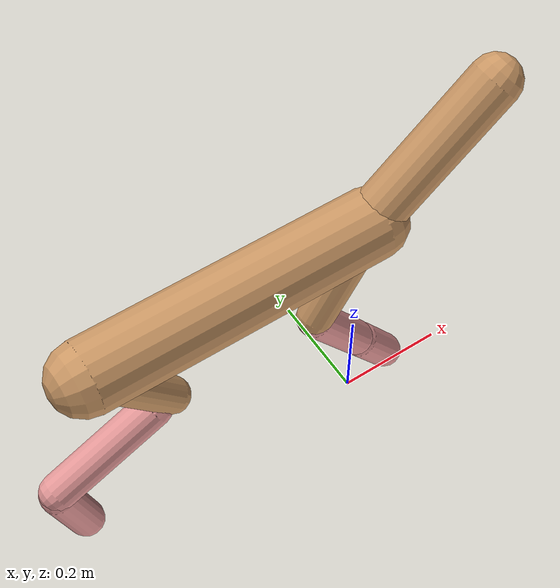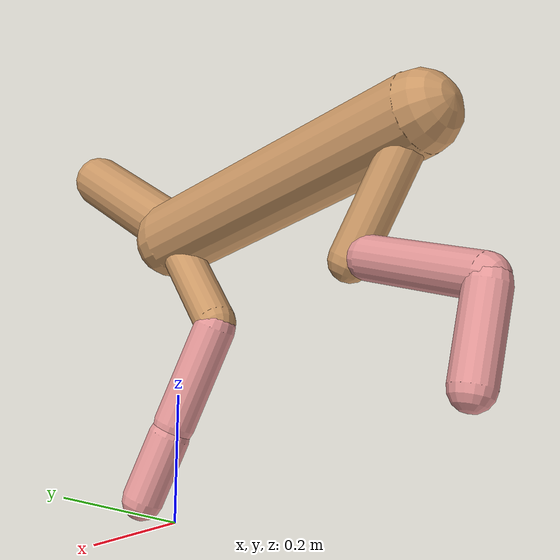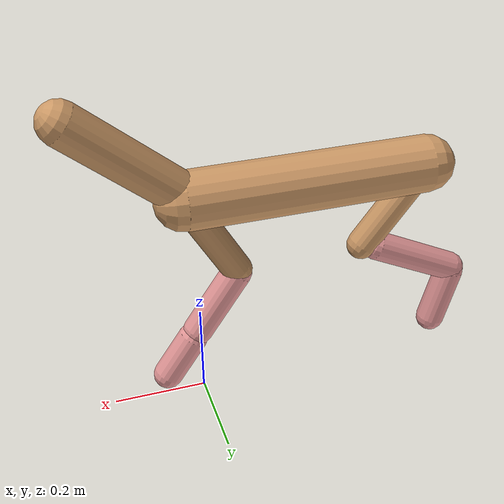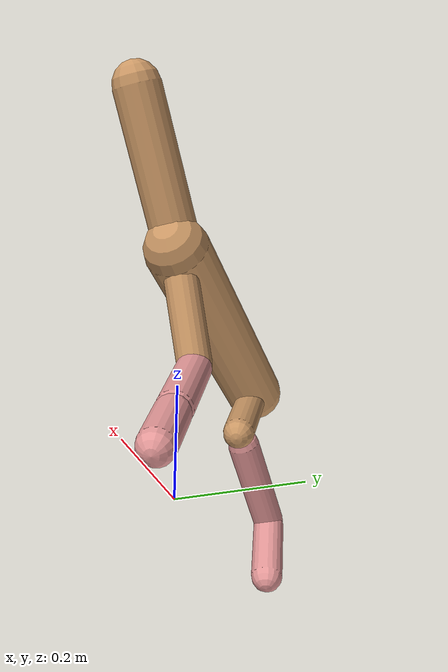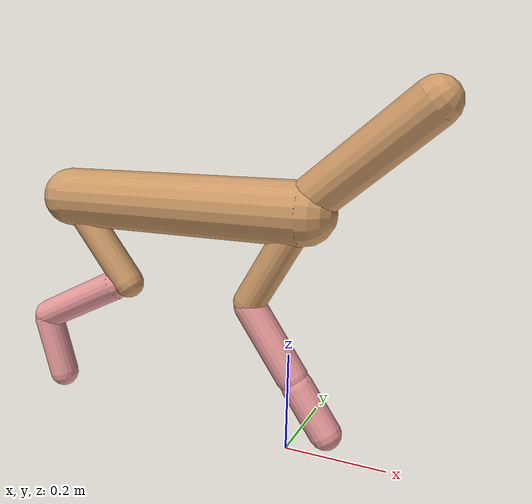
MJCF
<mujoco model="cheetah">
  <compiler angle="radian" coordinate="local" inertiafromgeom="true" settotalmass="14" />
  <default>
    <joint armature=".1" damping=".01" limited="true" solimplimit="0 .8 .03" solreflimit=".02 1" stiffness="8" />
    <geom conaffinity="0" condim="3" contype="1" friction="0.8 .1 .1" rgba="0.8 0.6 .4 1" solimp="0.0 0.8 0.01" solref="0.02 1" />
    <motor ctrllimited="true" ctrlrange="-1 1" />
  </default>
  <size nstack="300000" nuser_geom="1" />
  <option gravity="0 0 -9.81" timestep="0.01" />
  <worldbody>
    <body name="torso" pos="0.0 0.0 0.47696908071942345">
      <joint armature="0" axis="1 0 0" damping="0" limited="false" name="ignorex" pos="0 0 0" stiffness="0" type="slide" />
      <joint armature="0" axis="0 0 1" damping="0" limited="false" name="ignorez" pos="0 0 0" stiffness="0" type="slide" />
      <joint armature="0" axis="0 1 0" damping="0" limited="false" name="ignorey" pos="0 0 0" stiffness="0" type="hinge" />
      <geom fromto="-0.5 0.0 0.0 0.020594990245099642 0.0 0.0" name="torso" size="0.061440751106371774" type="capsule" />
      <geom axisangle="0 1 0 .87" name="head" pos="0.12059499024509968 0.0 0.1" size="0.04414210794252585 0.15" type="capsule" />

      <body name="bthigh" pos="-.5 0 0">
        <joint axis="0 1 0" damping="6" name="bthigh" pos="0 0 0" range="-.52 1.05" stiffness="240" type="hinge" />
        <geom axisangle="0 1 0 -3.8" name="bthigh" pos="0.0734775819030384 0.0 -0.0955208564739499" size="0.0322 0.10149999999999999" type="capsule" />
        <body name="bshin" pos="0.10695516380607678 0.0 -0.18104171294789978">
          <joint axis="0 1 0" damping="4.5" name="bshin" pos="0 0 0" range="-.785 .785" stiffness="180" type="hinge" />
          <geom axisangle="0 1 0 -2.03" name="bshin" pos="-0.0997507764050038 0.0 -0.0498753882025019" rgba="0.9 0.6 0.6 1" size="0.0322 0.105" type="capsule" />
          <body name="bfoot" pos="-0.1995015528100076 0.0 -0.0997507764050038">
            <joint axis="0 1 0" damping="3" name="bfoot" pos="0 0 0" range="-.4 .785" stiffness="120" type="hinge" />
            <geom axisangle="0 1 0 -.27" name="bfoot" pos="0.021667753813597694 0.0 -0.07005907066396588" rgba="0.9 0.6 0.6 1" size="0.0322 0.0658" type="capsule" />
            <inertial mass="10" />
          </body>
        </body>
      </body>
      <body name="fthigh" pos="0.020594990245099698 0.0 0.0">
        <joint axis="0 1 0" damping="4.5" name="fthigh" pos="0 0 0" range="-1.5 0.8" stiffness="180" type="hinge" />
        <geom axisangle="0 1 0 .52" name="fthigh" pos="-0.054365708371488145 0.0 -0.09319835720826537" size="0.0322 0.10197163989088215" type="capsule" />
        <body name="fshin" pos="-0.10873141674297629 0.0 -0.18639671441653075">
          <joint axis="0 1 0" damping="3" name="fshin" pos="0 0 0" range="-1.2 1.1" stiffness="120" type="hinge" />
          <geom axisangle="0 1 0 -.6" name="fshin" pos="0.05052118763166933 0.0 -0.06995241364384984" rgba="0.9 0.6 0.6 1" size="0.0322 0.08127063028897373" type="capsule" />
          <body name="ffoot" pos="0.10104237526333866 0.0 -0.13990482728769968">
            <joint axis="0 1 0" damping="1.5" name="ffoot" pos="0 0 0" range="-3.1 -0.3" stiffness="60" type="hinge" />
            <geom axisangle="0 1 0 -.6" name="ffoot" pos="0.036169041434202936 0.0 -0.056262953342093455" rgba="0.9 0.6 0.6 1" size="0.0322 0.05366928415309587" type="capsule" />
            <inertial mass="10" />
          </body>
        </body>
      </body>
    </body>
  </worldbody>
  <actuator>
    <motor gear="120" joint="bthigh" name="bthigh" />
    <motor gear="90" joint="bshin" name="bshin" />
    <motor gear="60" joint="bfoot" name="bfoot" />
    <motor gear="120" joint="fthigh" name="fthigh" />
    <motor gear="60" joint="fshin" name="fshin" />
    <motor gear="30" joint="ffoot" name="ffoot" />
  </actuator>
</mujoco>
